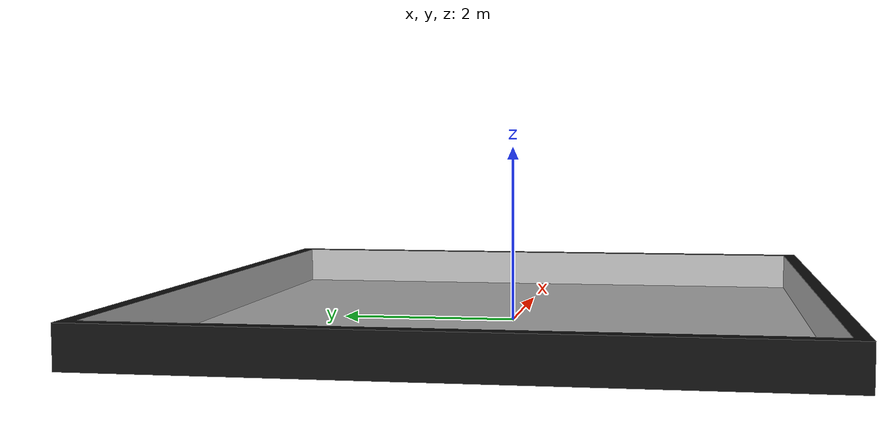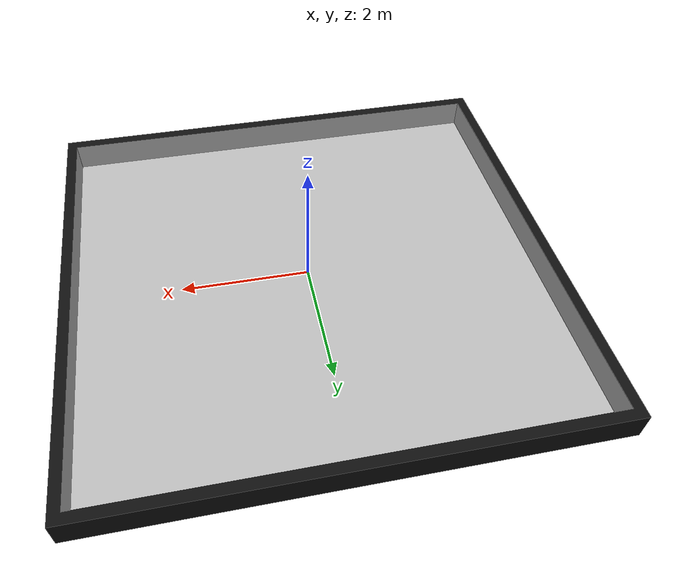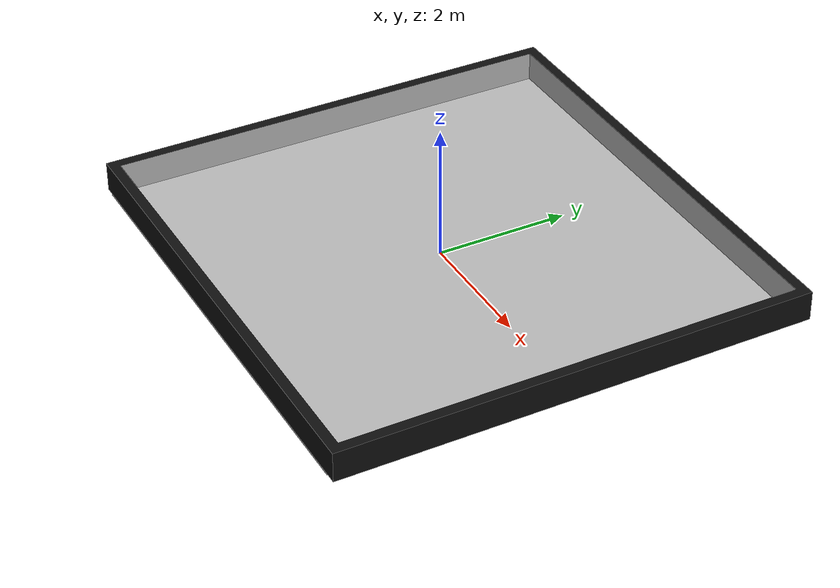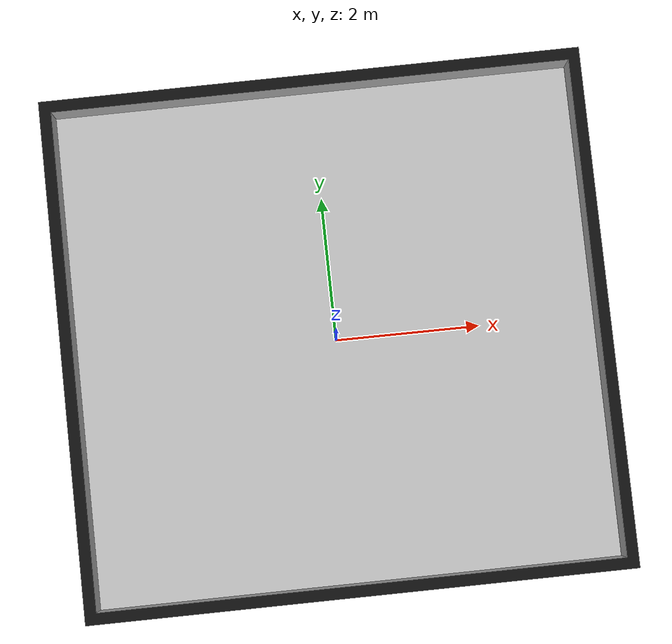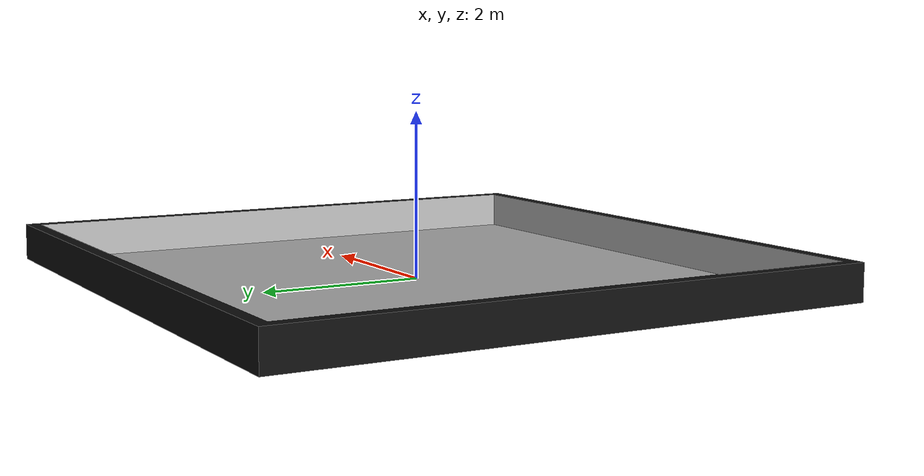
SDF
<?xml version='1.4'?>
<sdf version='1.4'>
    <model name="border_box_v2">
        <static>1</static>
        <link name="link_1">
            <visual name='visual'>
                <pose frame=''>0 0 0 0 0 0</pose>
                <geometry>
                    <mesh>
                        <uri>model://border_box_v2/meshes/border_box.dae</uri>
                        <scale>1.6 1.6 1</scale>
                    </mesh>
                </geometry>
            </visual>

            <collision name="collision_1">
                <pose frame=''>0 -3.48 0.225 0 0 0</pose>
                <geometry>
                    <box>
                        <size>7.2 0.16 0.45</size>
                    </box>
                </geometry>
            </collision>

            <collision name="collision_2">
                <pose frame=''>0 3.552 0.225 0 0 0</pose>
                <geometry>
                    <box>
                        <size>7.2 0.16 0.45</size>
                    </box>
                </geometry>
            </collision>

            <collision name="collision_3">
                <pose frame=''>-3.64 0 0.225 0 0 0</pose>
                <geometry>
                    <box>
                        <size>0.16 7.2 0.45</size>
                    </box>
                </geometry>
            </collision>

            <collision name="collision_4">
                <pose frame=''>3.552 0 0.225 0 0 0</pose>
                <geometry>
                    <box>
                        <size>0.16 7.2 0.45</size>
                    </box>
                </geometry>
            </collision>
        </link>
    </model>
</sdf>
